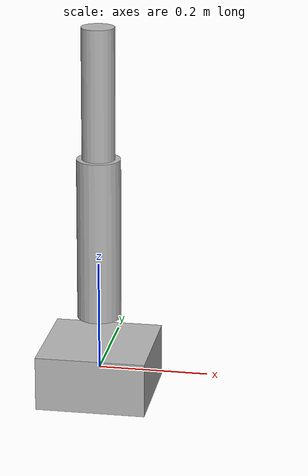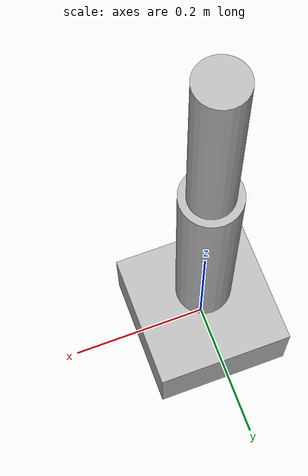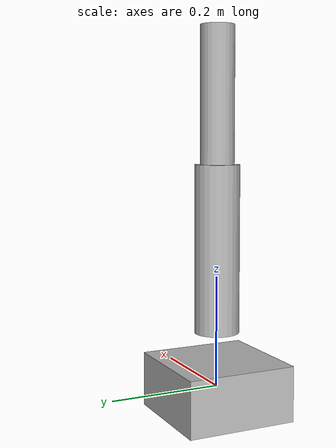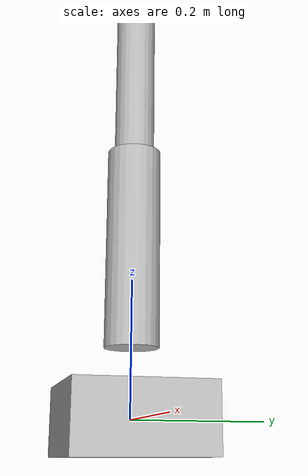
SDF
<?xml version="1.0"?>
<sdf version="1.7">
  <model name="simple_arm_sdf">
    <link name="base_link">
      <inertial>
        <pose>0 0 0.05 0 0 0</pose>
        <mass>5.0</mass>
        <inertia>
          <ixx>0.01</ixx><iyy>0.01</iyy><izz>0.005</izz>
          <ixy>0</ixy><ixz>0</ixz><iyz>0</iyz>
        </inertia>
      </inertial>
      <visual name="vis">
        <geometry>
          <box><size>0.2 0.2 0.1</size></box>
        </geometry>
      </visual>
      <collision name="col">
        <geometry>
          <box><size>0.2 0.2 0.1</size></box>
        </geometry>
      </collision>
    </link>

    <link name="upper_arm">
      <pose>0 0 0.1 0 0 0</pose>
      <inertial>
        <pose>0 0 0.15 0 0 0</pose>
        <mass>2.0</mass>
        <inertia>
          <ixx>0.02</ixx><iyy>0.02</iyy><izz>0.001</izz>
          <ixy>0</ixy><ixz>0</ixz><iyz>0</iyz>
        </inertia>
      </inertial>
      <visual name="vis">
        <pose>0 0 0.15 0 0 0</pose>
        <geometry>
          <cylinder><radius>0.04</radius><length>0.3</length></cylinder>
        </geometry>
      </visual>
    </link>

    <joint name="shoulder_pan" type="revolute">
      <parent>base_link</parent>
      <child>upper_arm</child>
      <axis>
        <xyz>0 0 1</xyz>
        <limit>
          <lower>-3.14</lower><upper>3.14</upper>
          <effort>100</effort><velocity>1.5</velocity>
        </limit>
        <dynamics>
          <damping>0.5</damping><friction>0.1</friction>
        </dynamics>
      </axis>
    </joint>

    <link name="forearm">
      <pose>0 0 0.4 0 0 0</pose>
      <inertial>
        <pose>0 0 0.12 0 0 0</pose>
        <mass>1.0</mass>
        <inertia>
          <ixx>0.01</ixx><iyy>0.01</iyy><izz>0.0005</izz>
          <ixy>0</ixy><ixz>0</ixz><iyz>0</iyz>
        </inertia>
      </inertial>
      <visual name="vis">
        <pose>0 0 0.12 0 0 0</pose>
        <geometry>
          <cylinder><radius>0.03</radius><length>0.24</length></cylinder>
        </geometry>
      </visual>
    </link>

    <joint name="elbow" type="revolute">
      <parent>upper_arm</parent>
      <child>forearm</child>
      <axis>
        <xyz>0 1 0</xyz>
        <limit>
          <lower>-2.0</lower><upper>2.0</upper>
          <effort>50</effort><velocity>2.0</velocity>
        </limit>
      </axis>
    </joint>
  </model>
</sdf>
